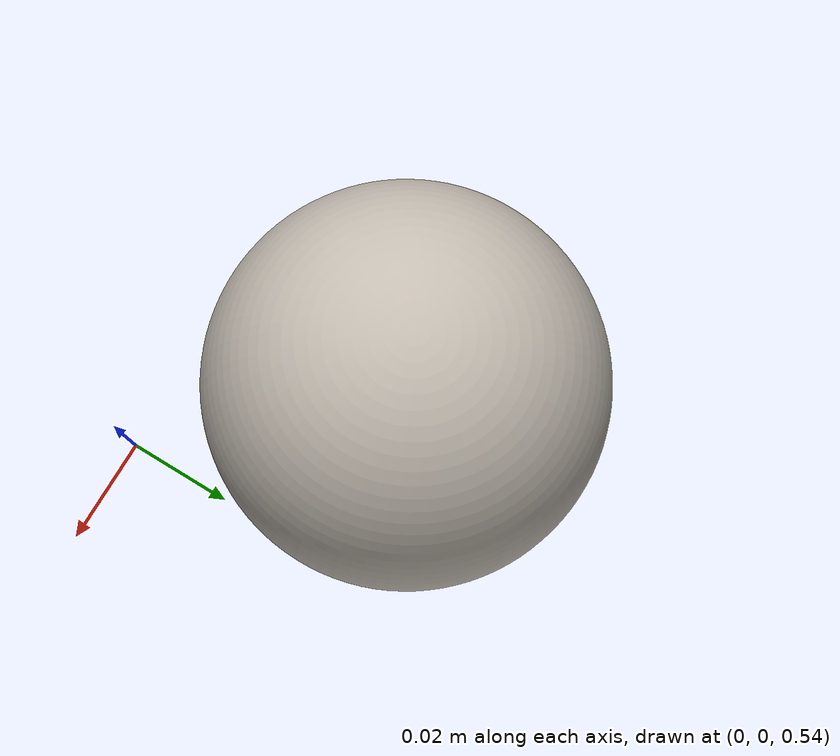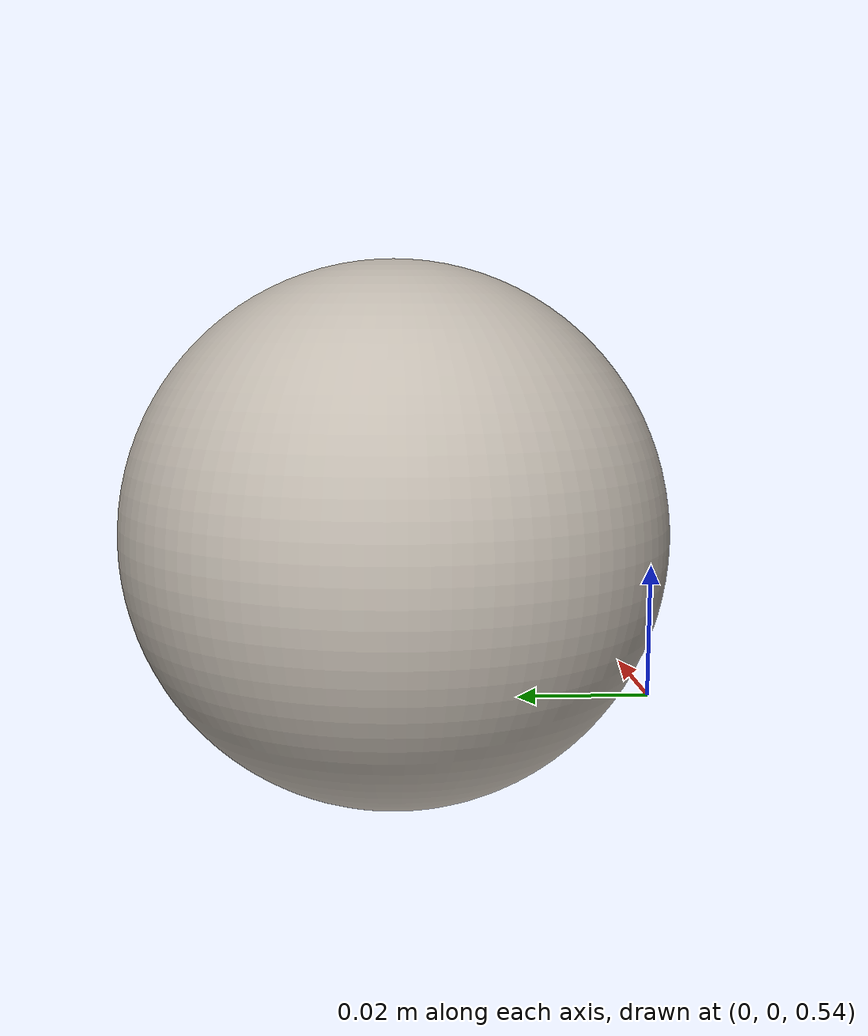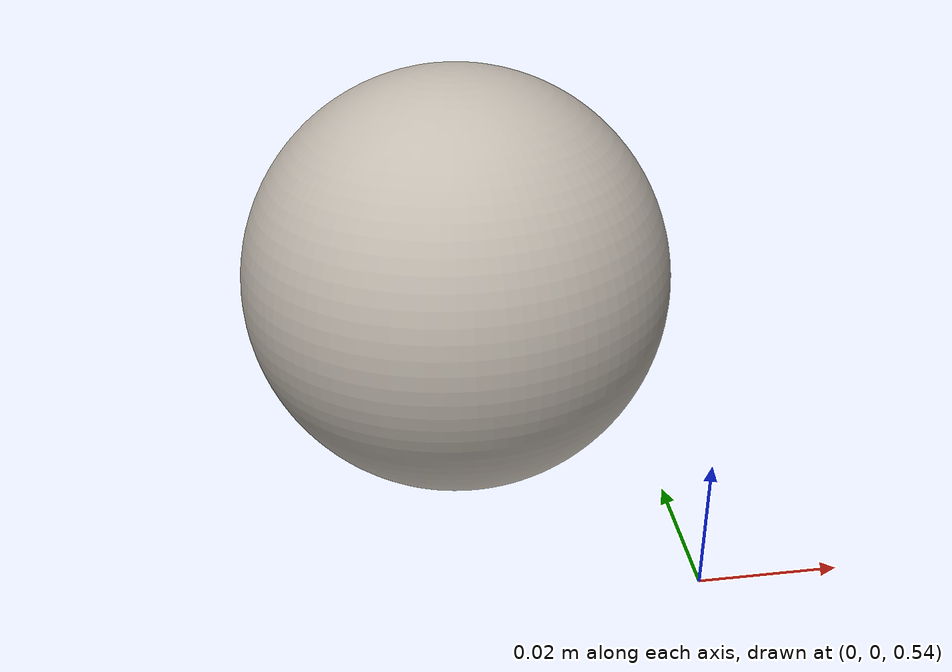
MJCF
<mujoco model="leap_hand_ball">
  <asset>
    <texture name="leap_ball_beach_texture" type="2d"
             file="textures/leap_ball_beach.png"/>
    <!-- leap_hand.xml sets meshdir=assets/menagerie for the robot meshes. -->
    <mesh name="leap_ball_visual_mesh" file="../leap_ball_visual.obj"
          scale="0.0335 0.0335 0.0335"/>
    <material name="leap_ball_material" texture="leap_ball_beach_texture"
              rgba="1 1 1 1" specular="0.2" shininess="0.3"/>
    <material name="leap_ball_marker_material" rgba="1 1 1 0"/>
  </asset>

  <worldbody>
    <body name="leap_object" pos="-0.03 0.04 0.57">
      <freejoint name="leap_object_joint"/>
      <inertial pos="0 0 0" mass="0.05" diaginertia="0.0001 0.0001 0.0001"/>
      <geom name="leap_object_col" type="sphere" size="0.0335"
            mass="0.05" rgba="1 1 1 0" condim="6"
            friction="2.0 0.05 0.01" solimp="0.9 0.95 0.001" solref="0.02 1"/>
      <geom name="leap_object_visual" type="mesh" mesh="leap_ball_visual_mesh"
            material="leap_ball_material" contype="0" conaffinity="0" group="2"/>
      <geom name="leap_ball_rotation_marker" type="capsule"
            fromto="0.039 0 -0.012 0.039 0 0.012" size="0.002"
            material="leap_ball_marker_material" contype="0" conaffinity="0"/>
    </body>
  </worldbody>
</mujoco>
